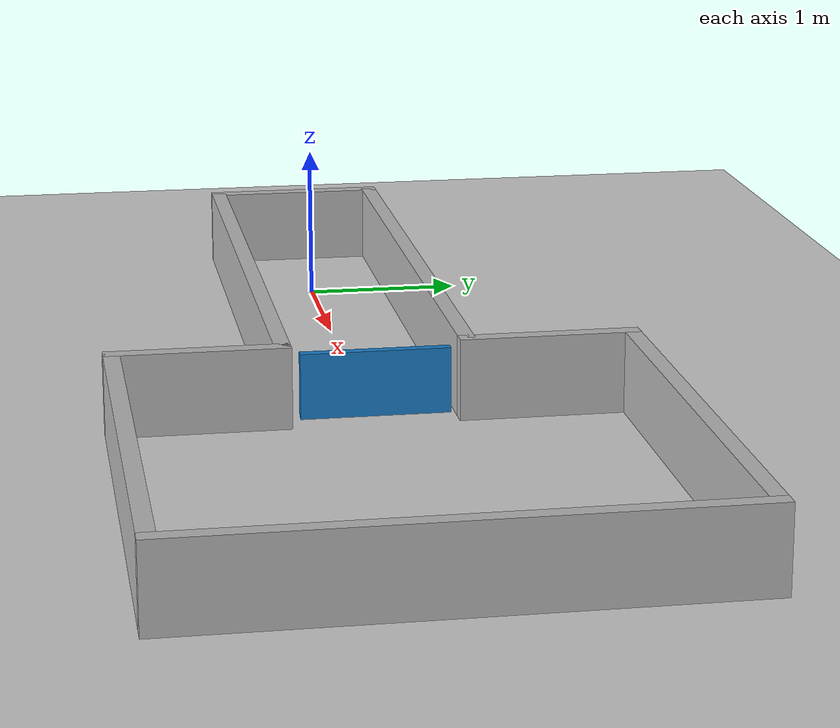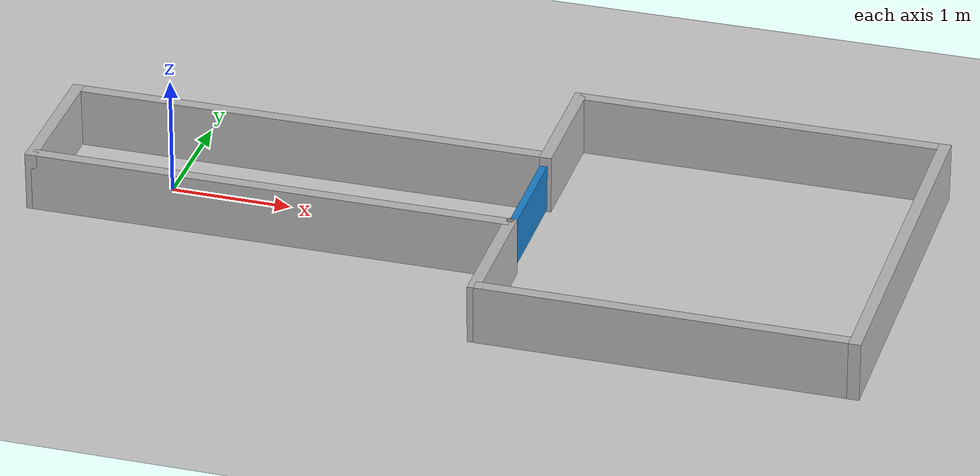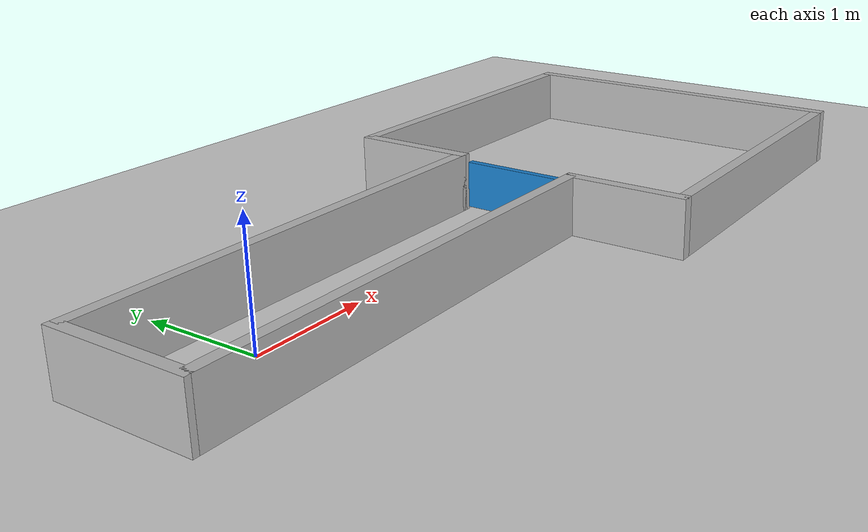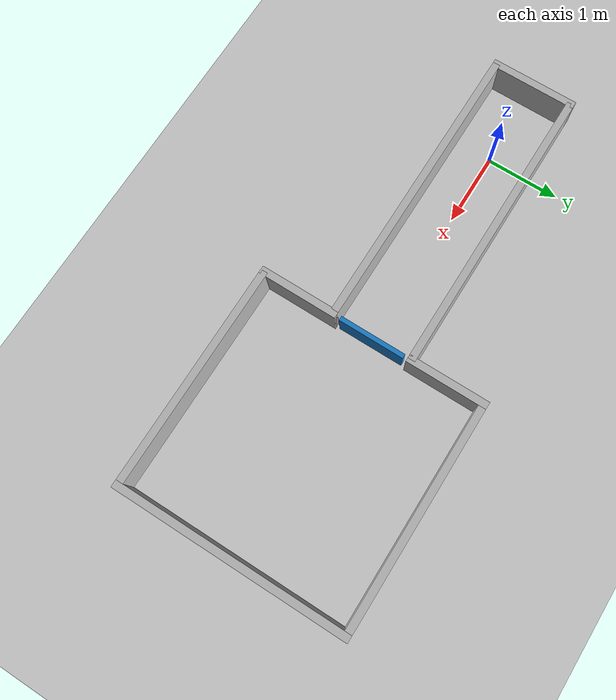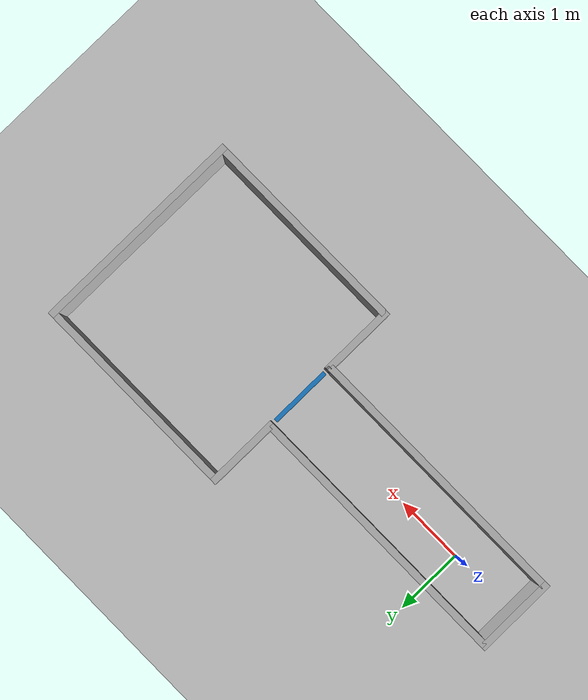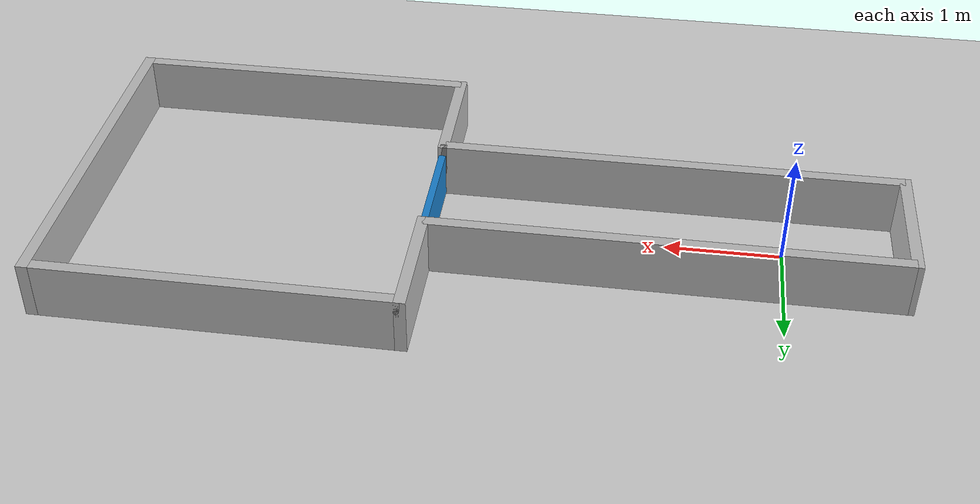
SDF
<?xml version="1.0"?>
<sdf version="1.10">
  <world name="default">

    <physics name="1ms" type="ignored">
      <max_step_size>0.001</max_step_size>
      <real_time_factor>1.0</real_time_factor>
    </physics>
    <plugin filename="gz-sim-physics-system"
            name="gz::sim::systems::Physics"/>
    <plugin filename="gz-sim-user-commands-system"
            name="gz::sim::systems::UserCommands"/>
    <plugin filename="gz-sim-scene-broadcaster-system"
            name="gz::sim::systems::SceneBroadcaster"/>
    <plugin filename="gz-sim-sensors-system"
            name="gz::sim::systems::Sensors">
      <render_engine>ogre2</render_engine>
    </plugin>

    <light type="directional" name="sun">
      <cast_shadows>true</cast_shadows>
      <pose>0 0 10 0 0 0</pose>
      <diffuse>0.8 0.8 0.8 1</diffuse>
      <specular>0.2 0.2 0.2 1</specular>
      <direction>-0.5 0.1 -0.9</direction>
    </light>

    <model name="ground_plane">
      <static>true</static>
      <link name="link">
        <collision name="collision">
          <geometry><plane>
            <normal>0 0 1</normal>
            <size>20 20</size>
          </plane></geometry>
        </collision>
        <visual name="visual">
          <geometry><plane>
            <normal>0 0 1</normal>
            <size>20 20</size>
          </plane></geometry>
          <material>
            <ambient>0.8 0.8 0.8 1</ambient>
            <diffuse>0.8 0.8 0.8 1</diffuse>
            <specular>0.8 0.8 0.8 1</specular>
          </material>
        </visual>
      </link>
    </model>

    <model name="walls">
      <static>true</static>
      <link name="link">

        <!-- Corridor north wall: y=+0.55, x in [-1.0, 3.0] (extended west so
             the cap clears the robot's rear at spawn x=-0.5, chassis 0.30 long) -->
        <collision name="c_corr_n">
          <pose>1.0 0.55 0.25 0 0 0</pose>
          <geometry><box><size>4.0 0.1 0.5</size></box></geometry>
        </collision>
        <visual name="v_corr_n">
          <pose>1.0 0.55 0.25 0 0 0</pose>
          <geometry><box><size>4.0 0.1 0.5</size></box></geometry>
        </visual>

        <!-- Corridor south wall: y=-0.55, x in [-1.0, 3.0] -->
        <collision name="c_corr_s">
          <pose>1.0 -0.55 0.25 0 0 0</pose>
          <geometry><box><size>4.0 0.1 0.5</size></box></geometry>
        </collision>
        <visual name="v_corr_s">
          <pose>1.0 -0.55 0.25 0 0 0</pose>
          <geometry><box><size>4.0 0.1 0.5</size></box></geometry>
        </visual>

        <!-- West end cap: x=-1.0 (robot rear at x~=-0.65 -> ~0.3 m clearance) -->
        <collision name="c_westcap">
          <pose>-1.0 0 0.25 0 0 0</pose>
          <geometry><box><size>0.1 1.2 0.5</size></box></geometry>
        </collision>
        <visual name="v_westcap">
          <pose>-1.0 0 0.25 0 0 0</pose>
          <geometry><box><size>0.1 1.2 0.5</size></box></geometry>
        </visual>

        <!-- Door front wall, north of doorway: x=3.0, y in [0.5, 1.6] -->
        <collision name="c_front_n">
          <pose>3.0 1.05 0.25 0 0 0</pose>
          <geometry><box><size>0.1 1.1 0.5</size></box></geometry>
        </collision>
        <visual name="v_front_n">
          <pose>3.0 1.05 0.25 0 0 0</pose>
          <geometry><box><size>0.1 1.1 0.5</size></box></geometry>
        </visual>

        <!-- Door front wall, south of doorway: x=3.0, y in [-1.6, -0.5] -->
        <collision name="c_front_s">
          <pose>3.0 -1.05 0.25 0 0 0</pose>
          <geometry><box><size>0.1 1.1 0.5</size></box></geometry>
        </collision>
        <visual name="v_front_s">
          <pose>3.0 -1.05 0.25 0 0 0</pose>
          <geometry><box><size>0.1 1.1 0.5</size></box></geometry>
        </visual>

        <!-- Room north wall: y=+1.55, x in [3.0, 6.0] -->
        <collision name="c_room_n">
          <pose>4.5 1.55 0.25 0 0 0</pose>
          <geometry><box><size>3.0 0.1 0.5</size></box></geometry>
        </collision>
        <visual name="v_room_n">
          <pose>4.5 1.55 0.25 0 0 0</pose>
          <geometry><box><size>3.0 0.1 0.5</size></box></geometry>
        </visual>

        <!-- Room south wall: y=-1.55, x in [3.0, 6.0] -->
        <collision name="c_room_s">
          <pose>4.5 -1.55 0.25 0 0 0</pose>
          <geometry><box><size>3.0 0.1 0.5</size></box></geometry>
        </collision>
        <visual name="v_room_s">
          <pose>4.5 -1.55 0.25 0 0 0</pose>
          <geometry><box><size>3.0 0.1 0.5</size></box></geometry>
        </visual>

        <!-- Room back wall: x=6.05, y in [-1.6, 1.6] -->
        <collision name="c_room_back">
          <pose>6.05 0 0.25 0 0 0</pose>
          <geometry><box><size>0.1 3.2 0.5</size></box></geometry>
        </collision>
        <visual name="v_room_back">
          <pose>6.05 0 0.25 0 0 0</pose>
          <geometry><box><size>0.1 3.2 0.5</size></box></geometry>
        </visual>

      </link>
    </model>

    <model name="door">
      <pose>3.0 -0.45 0 0 0 0</pose>
      <link name="frame_post">
        <!-- small hinge mount just south of the panel, tucked at the jamb -->
        <pose>0 -0.075 0.25 0 0 0</pose>
        <inertial>
          <mass>0.1</mass>
          <inertia><ixx>0.001</ixx><ixy>0</ixy><ixz>0</ixz>
                   <iyy>0.001</iyy><iyz>0</iyz><izz>0.001</izz></inertia>
        </inertial>
        <collision name="collision">
          <geometry><box><size>0.06 0.05 0.5</size></box></geometry>
        </collision>
        <visual name="visual">
          <geometry><box><size>0.06 0.05 0.5</size></box></geometry>
          <material>
            <ambient>0.5 0.5 0.5 1</ambient><diffuse>0.5 0.5 0.5 1</diffuse>
          </material>
        </visual>
      </link>
      <link name="panel">
        <!-- centre 0.45 north of the hinge -> spans world y in [-0.45, 0.45] -->
        <pose>0 0.45 0.25 0 0 0</pose>
        <!-- Light panel so one arm stroke imparts enough momentum to coast it
             open (no spring -> it stays open). mass 0.3->0.15, inertia scaled. -->
        <inertial>
          <mass>0.15</mass>
          <inertia><ixx>0.0121</ixx><ixy>0</ixy><ixz>0</ixz>
                   <iyy>0.0020</iyy><iyz>0</iyz><izz>0.0102</izz></inertia>
        </inertial>
        <collision name="collision">
          <geometry><box><size>0.06 0.9 0.4</size></box></geometry>
          <surface><friction><ode>
            <mu>0.2</mu><mu2>0.2</mu2>
          </ode></friction></surface>
        </collision>
        <visual name="visual">
          <geometry><box><size>0.06 0.9 0.4</size></box></geometry>
          <material>
            <ambient>0.1 0.5 0.8 1</ambient>
            <diffuse>0.1 0.5 0.8 1</diffuse>
            <specular>0.2 0.2 0.2 1</specular>
          </material>
        </visual>
      </link>
      <joint name="frame_fixed" type="fixed">
        <parent>world</parent>
        <child>frame_post</child>
      </joint>
      <joint name="hinge" type="revolute">
        <parent>frame_post</parent>
        <child>panel</child>
        <!-- hinge at the panel's south end = model origin (3.0, -0.45) -->
        <pose>0 -0.45 0 0 0 0</pose>
        <axis>
          <xyz>0 0 1</xyz>
          <limit><lower>-1.8</lower><upper>0.0</upper></limit>
          <dynamics><damping>0.01</damping></dynamics>
        </axis>
      </joint>
    </model>

  </world>
</sdf>
